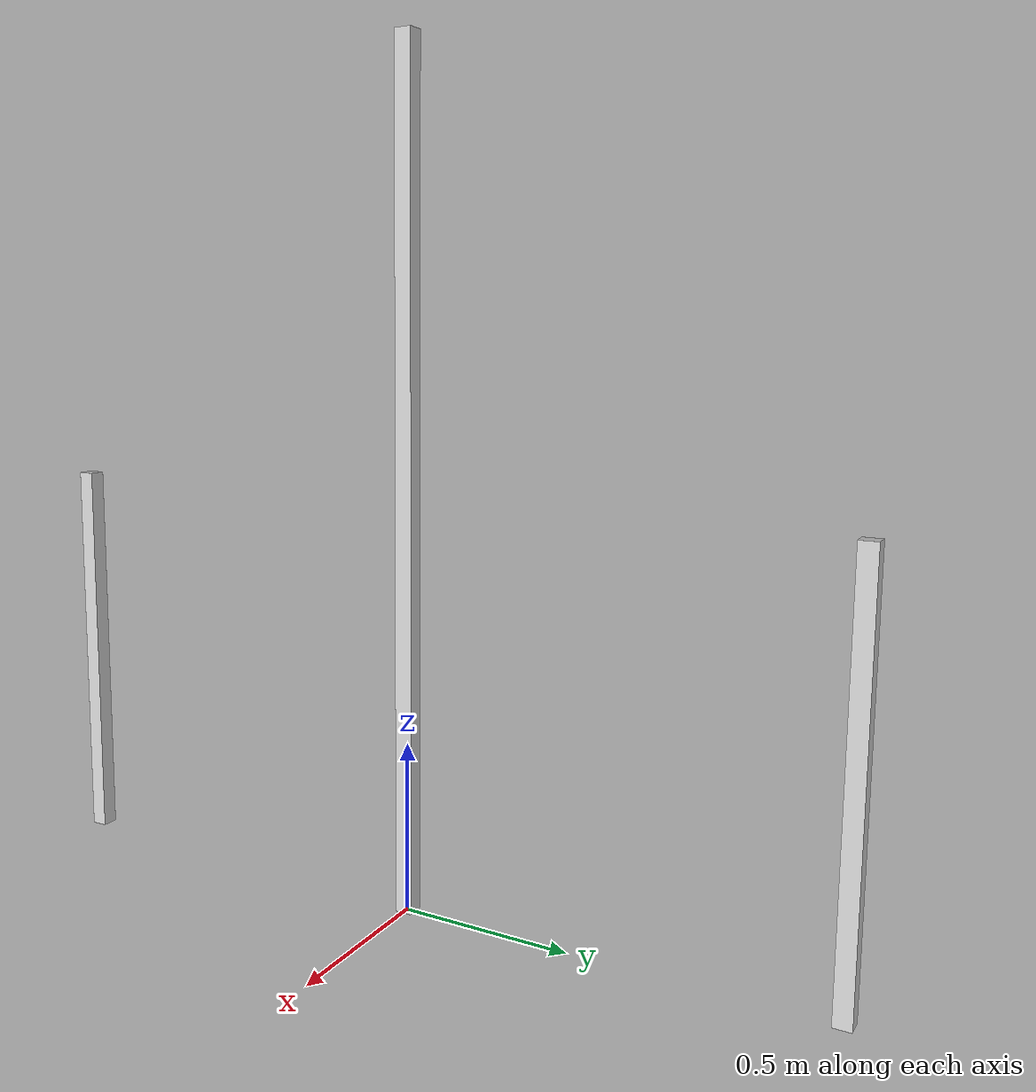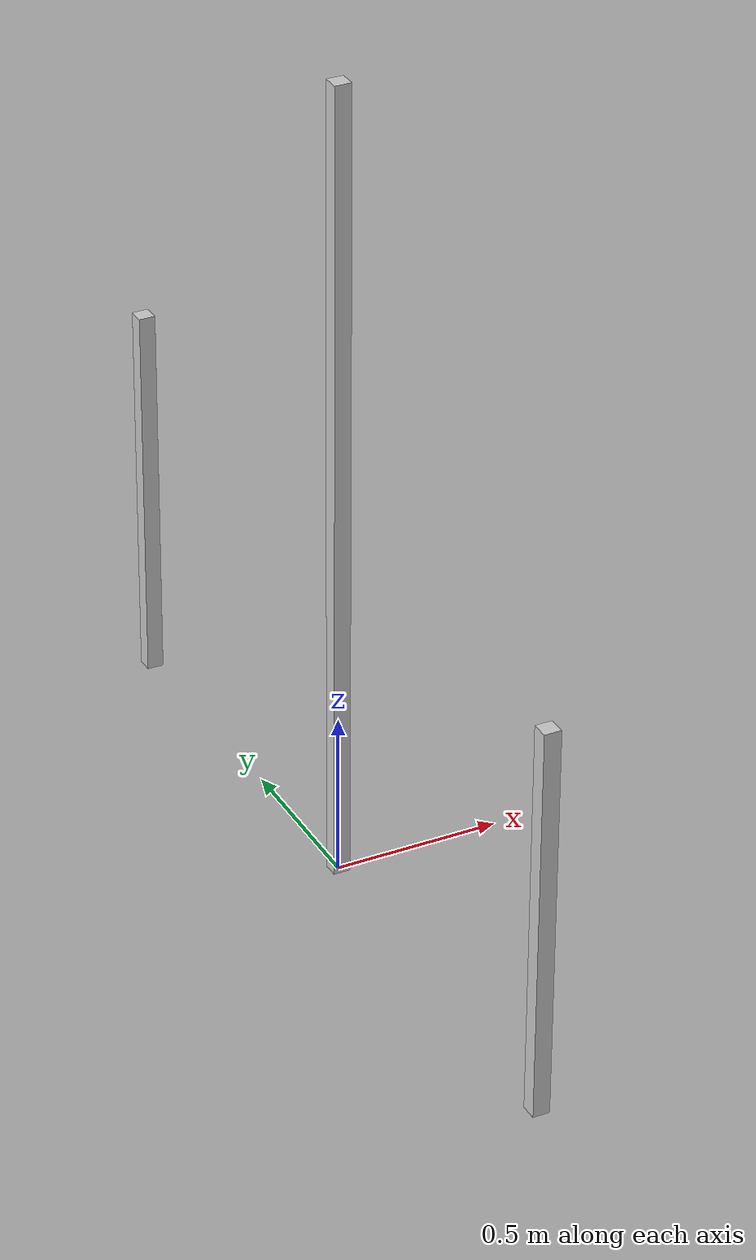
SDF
<?xml version='1.0'?>
<sdf version='1.7'>
  <model name='soccer_goal'>
    <static>true</static>
    <link name='post_left'>
      <pose>-0.025 1.225 0.6 0 0 0</pose>
      <visual name='visual'>
        <geometry>
          <box>
            <size>0.05 0.05 1.2</size>
          </box>
        </geometry>
        <material>
          <ambient>0.8 0.8 0.8 1</ambient>
          <diffuse>0.8 0.8 0.8 1</diffuse>
        </material>
      </visual>
      <collision name='collision'>
        <geometry>
          <box>
            <size>0.05 0.05 1.2</size>
          </box>
        </geometry>
      </collision>
    </link>
    <link name='post_right'>
      <pose>-0.025 -1.225 0.6 0 0 0</pose>
      <visual name='visual'>
        <geometry>
          <box>
            <size>0.05 0.05 1.2</size>
          </box>
        </geometry>
        <material>
          <ambient>0.8 0.8 0.8 1</ambient>
          <diffuse>0.8 0.8 0.8 1</diffuse>
        </material>
      </visual>
      <collision name='collision'>
        <geometry>
          <box>
            <size>0.05 0.05 1.2</size>
          </box>
        </geometry>
      </collision>
    </link>
    <link name='crossbar'>
      <pose>0 0 1.225 0 0 1.5707</pose>
      <visual name='visual'>
        <geometry>
          <box>
            <size>0.05 0.05 2.45</size>
          </box>
        </geometry>
        <material>
          <ambient>0.8 0.8 0.8 1</ambient>
          <diffuse>0.8 0.8 0.8 1</diffuse>
        </material>
      </visual>
      <collision name='collision'>
        <geometry>
          <box>
            <size>0.05 0.05 2.45</size>
          </box>
        </geometry>
      </collision>
    </link>
  </model>
</sdf>
